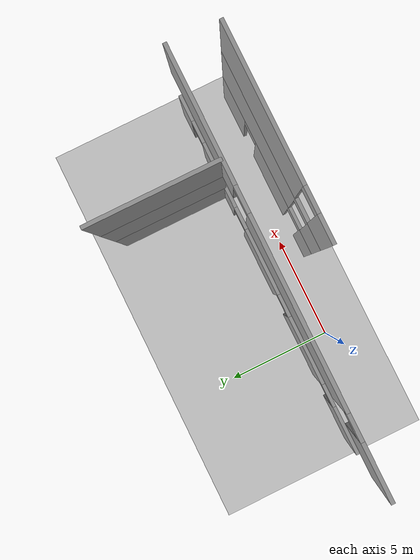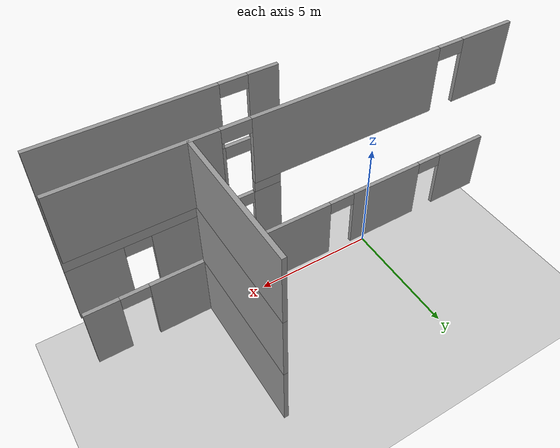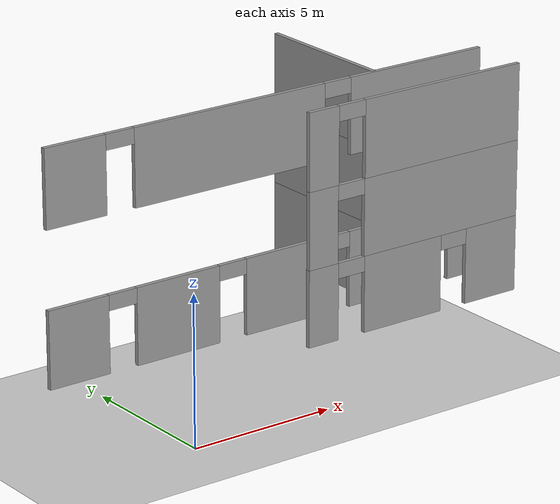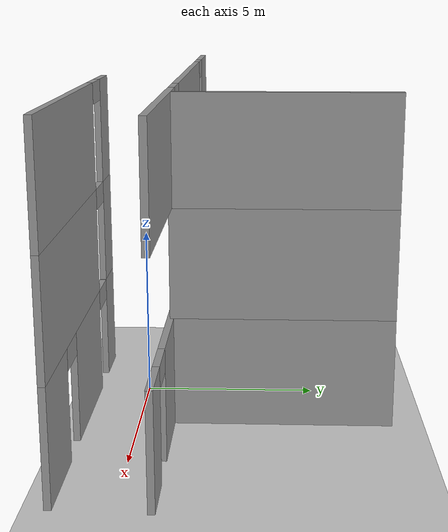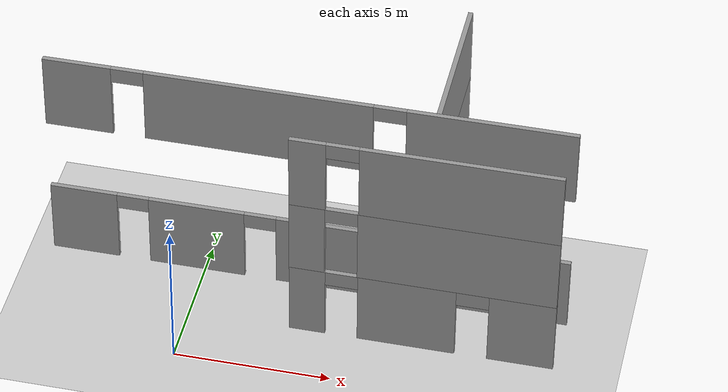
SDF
<sdf version="1.6">
 <world name="default">
  <model name="ground_plane">
   <static>1</static>
   <link name="link">
    <collision name="collision">
     <geometry><plane><normal>0 0 1</normal><size>100 100</size></plane></geometry>
     <surface>
      <contact><collide_bitmask>65535</collide_bitmask></contact>
      <friction><ode><mu>100</mu><mu2>50</mu2></ode></friction>
     </surface>
    </collision>
    <visual name="visual">
     <cast_shadows>0</cast_shadows>
     <geometry><plane><normal>0 0 1</normal><size>100 100</size></plane></geometry>
     <material>
      <script><uri>file://media/materials/scripts/gazebo.material</uri><name>Gazebo/Grey</name></script>
     </material>
    </visual>
   </link>
  </model>
  <model name="floor2plan_v2">
   <link name="Wall_110">
    <pose>7.96541 3.97 5 0 0 -1.5708</pose>
    <visual name="Wall_110_Visual">
     <pose>0 0 1.25 0 -0 0</pose>
     <geometry><box><size>5 0.15 2.5</size></box></geometry>
     <material>
      <script><uri>file://media/materials/scripts/gazebo.material</uri><name>Gazebo/Grey</name></script>
      <ambient>1 1 1 1</ambient>
      <shader type="pixel"/>
      <diffuse>0.7 0.7 0.7 1</diffuse>
      <specular>0.01 0.01 0.01 1</specular>
      <emissive>0 0 0 1</emissive>
     </material>
     <meta><layer>2</layer></meta>
    </visual>
    <collision name="Wall_110_Collision">
     <pose>0 0 1.25 0 -0 0</pose>
     <geometry><box><size>5 0.15 2.5</size></box></geometry>
     <surface>
      <friction>
       <ode><mu>1</mu><mu2>1</mu2><fdir1>0 0 0</fdir1><slip1>0</slip1><slip2>0</slip2></ode>
       <torsional>
        <coefficient>1</coefficient>
        <patch_radius>0</patch_radius>
        <surface_radius>0</surface_radius>
        <use_patch_radius>1</use_patch_radius>
        <ode><slip>0</slip></ode>
       </torsional>
      </friction>
      <bounce><restitution_coefficient>0</restitution_coefficient><threshold>1e+06</threshold></bounce>
      <contact>
       <collide_without_contact>0</collide_without_contact>
       <collide_without_contact_bitmask>1</collide_without_contact_bitmask>
       <collide_bitmask>1</collide_bitmask>
       <ode>
        <soft_cfm>0</soft_cfm>
        <soft_erp>0.2</soft_erp>
        <kp>1e+13</kp>
        <kd>1</kd>
        <max_vel>0.01</max_vel>
        <min_depth>0</min_depth>
       </ode>
       <bullet>
        <split_impulse>1</split_impulse>
        <split_impulse_penetration_threshold>-0.01</split_impulse_penetration_threshold>
        <soft_cfm>0</soft_cfm>
        <soft_erp>0.2</soft_erp>
        <kp>1e+13</kp>
        <kd>1</kd>
       </bullet>
      </contact>
     </surface>
    </collision>
   </link>
   <link name="Wall_116">
    <pose>7.9911 -0.509284 5 0 -0 0</pose>
    <visual name="Wall_116_Visual_0">
     <pose>-3.526 0 1.25 0 -0 0</pose>
     <geometry><box><size>1.086 0.15 2.5</size></box></geometry>
     <material>
      <script><uri>file://media/materials/scripts/gazebo.material</uri><name>Gazebo/Grey</name></script>
      <ambient>1 1 1 1</ambient>
      <shader type="pixel"/>
      <diffuse>0.7 0.7 0.7 1</diffuse>
      <specular>0.01 0.01 0.01 1</specular>
      <emissive>0 0 0 1</emissive>
     </material>
     <meta><layer>2</layer></meta>
    </visual>
    <visual name="Wall_116_Visual_1">
     <pose>1.043 0 1.25 0 -0 0</pose>
     <geometry><box><size>6.052 0.15 2.5</size></box></geometry>
     <material>
      <script><uri>file://media/materials/scripts/gazebo.material</uri><name>Gazebo/Grey</name></script>
      <ambient>1 1 1 1</ambient>
      <shader type="pixel"/>
      <diffuse>0.7 0.7 0.7 1</diffuse>
      <specular>0.01 0.01 0.01 1</specular>
      <emissive>0 0 0 1</emissive>
     </material>
     <meta><layer>2</layer></meta>
    </visual>
    <visual name="Wall_116_Visual_2">
     <pose>-2.483 0 2.25 0 -0 0</pose>
     <geometry><box><size>1 0.15 0.5</size></box></geometry>
     <material>
      <script><uri>file://media/materials/scripts/gazebo.material</uri><name>Gazebo/Grey</name></script>
      <ambient>1 1 1 1</ambient>
      <shader type="pixel"/>
      <diffuse>0.7 0.7 0.7 1</diffuse>
      <specular>0.01 0.01 0.01 1</specular>
      <emissive>0 0 0 1</emissive>
     </material>
     <meta><layer>2</layer></meta>
    </visual>
    <collision name="Wall_116_Collision_0">
     <pose>-3.526 0 1.25 0 -0 0</pose>
     <geometry><box><size>1.086 0.15 2.5</size></box></geometry>
     <surface>
      <friction>
       <ode><mu>1</mu><mu2>1</mu2><fdir1>0 0 0</fdir1><slip1>0</slip1><slip2>0</slip2></ode>
       <torsional>
        <coefficient>1</coefficient>
        <patch_radius>0</patch_radius>
        <surface_radius>0</surface_radius>
        <use_patch_radius>1</use_patch_radius>
        <ode><slip>0</slip></ode>
       </torsional>
      </friction>
      <bounce><restitution_coefficient>0</restitution_coefficient><threshold>1e+06</threshold></bounce>
      <contact>
       <collide_without_contact>0</collide_without_contact>
       <collide_without_contact_bitmask>1</collide_without_contact_bitmask>
       <collide_bitmask>1</collide_bitmask>
       <ode>
        <soft_cfm>0</soft_cfm>
        <soft_erp>0.2</soft_erp>
        <kp>1e+13</kp>
        <kd>1</kd>
        <max_vel>0.01</max_vel>
        <min_depth>0</min_depth>
       </ode>
       <bullet>
        <split_impulse>1</split_impulse>
        <split_impulse_penetration_threshold>-0.01</split_impulse_penetration_threshold>
        <soft_cfm>0</soft_cfm>
        <soft_erp>0.2</soft_erp>
        <kp>1e+13</kp>
        <kd>1</kd>
       </bullet>
      </contact>
     </surface>
    </collision>
    <collision name="Wall_116_Collision_1">
     <pose>1.043 0 1.25 0 -0 0</pose>
     <geometry><box><size>6.052 0.15 2.5</size></box></geometry>
     <surface>
      <friction>
       <ode><mu>1</mu><mu2>1</mu2><fdir1>0 0 0</fdir1><slip1>0</slip1><slip2>0</slip2></ode>
       <torsional>
        <coefficient>1</coefficient>
        <patch_radius>0</patch_radius>
        <surface_radius>0</surface_radius>
        <use_patch_radius>1</use_patch_radius>
        <ode><slip>0</slip></ode>
       </torsional>
      </friction>
      <bounce><restitution_coefficient>0</restitution_coefficient><threshold>1e+06</threshold></bounce>
      <contact>
       <collide_without_contact>0</collide_without_contact>
       <collide_without_contact_bitmask>1</collide_without_contact_bitmask>
       <collide_bitmask>1</collide_bitmask>
       <ode>
        <soft_cfm>0</soft_cfm>
        <soft_erp>0.2</soft_erp>
        <kp>1e+13</kp>
        <kd>1</kd>
        <max_vel>0.01</max_vel>
        <min_depth>0</min_depth>
       </ode>
       <bullet>
        <split_impulse>1</split_impulse>
        <split_impulse_penetration_threshold>-0.01</split_impulse_penetration_threshold>
        <soft_cfm>0</soft_cfm>
        <soft_erp>0.2</soft_erp>
        <kp>1e+13</kp>
        <kd>1</kd>
       </bullet>
      </contact>
     </surface>
    </collision>
    <collision name="Wall_116_Collision_2">
     <pose>-2.483 0 2.25 0 -0 0</pose>
     <geometry><box><size>1 0.15 0.5</size></box></geometry>
     <surface>
      <friction>
       <ode><mu>1</mu><mu2>1</mu2><fdir1>0 0 0</fdir1><slip1>0</slip1><slip2>0</slip2></ode>
       <torsional>
        <coefficient>1</coefficient>
        <patch_radius>0</patch_radius>
        <surface_radius>0</surface_radius>
        <use_patch_radius>1</use_patch_radius>
        <ode><slip>0</slip></ode>
       </torsional>
      </friction>
      <bounce><restitution_coefficient>0</restitution_coefficient><threshold>1e+06</threshold></bounce>
      <contact>
       <collide_without_contact>0</collide_without_contact>
       <collide_without_contact_bitmask>1</collide_without_contact_bitmask>
       <collide_bitmask>1</collide_bitmask>
       <ode>
        <soft_cfm>0</soft_cfm>
        <soft_erp>0.2</soft_erp>
        <kp>1e+13</kp>
        <kd>1</kd>
        <max_vel>0.01</max_vel>
        <min_depth>0</min_depth>
       </ode>
       <bullet>
        <split_impulse>1</split_impulse>
        <split_impulse_penetration_threshold>-0.01</split_impulse_penetration_threshold>
        <soft_cfm>0</soft_cfm>
        <soft_erp>0.2</soft_erp>
        <kp>1e+13</kp>
        <kd>1</kd>
       </bullet>
      </contact>
     </surface>
    </collision>
   </link>
   <link name="Wall_131">
    <pose>4.0241 1.47672 7.5 0 -0 0</pose>
    <visual name="Wall_131_Visual_0">
     <pose>-7.0665 0 1.25 0 -0 0</pose>
     <geometry><box><size>2.117 0.15 2.5</size></box></geometry>
     <material>
      <script><uri>file://media/materials/scripts/gazebo.material</uri><name>Gazebo/Grey</name></script>
      <ambient>1 1 1 1</ambient>
      <shader type="pixel"/>
      <diffuse>0.7 0.7 0.7 1</diffuse>
      <specular>0.01 0.01 0.01 1</specular>
      <emissive>0 0 0 1</emissive>
     </material>
     <meta><layer>3</layer></meta>
    </visual>
    <visual name="Wall_131_Visual_1">
     <pose>-1.506 0 1.25 0 -0 0</pose>
     <geometry><box><size>7.004 0.15 2.5</size></box></geometry>
     <material>
      <script><uri>file://media/materials/scripts/gazebo.material</uri><name>Gazebo/Grey</name></script>
      <ambient>1 1 1 1</ambient>
      <shader type="pixel"/>
      <diffuse>0.7 0.7 0.7 1</diffuse>
      <specular>0.01 0.01 0.01 1</specular>
      <emissive>0 0 0 1</emissive>
     </material>
     <meta><layer>3</layer></meta>
    </visual>
    <visual name="Wall_131_Visual_2">
     <pose>5.5605 0 1.25 0 -0 0</pose>
     <geometry><box><size>5.129 0.15 2.5</size></box></geometry>
     <material>
      <script><uri>file://media/materials/scripts/gazebo.material</uri><name>Gazebo/Grey</name></script>
      <ambient>1 1 1 1</ambient>
      <shader type="pixel"/>
      <diffuse>0.7 0.7 0.7 1</diffuse>
      <specular>0.01 0.01 0.01 1</specular>
      <emissive>0 0 0 1</emissive>
     </material>
     <meta><layer>3</layer></meta>
    </visual>
    <visual name="Wall_131_Visual_3">
     <pose>-5.508 0 2.25 0 -0 0</pose>
     <geometry><box><size>1 0.15 0.5</size></box></geometry>
     <material>
      <script><uri>file://media/materials/scripts/gazebo.material</uri><name>Gazebo/Grey</name></script>
      <ambient>1 1 1 1</ambient>
      <shader type="pixel"/>
      <diffuse>0.7 0.7 0.7 1</diffuse>
      <specular>0.01 0.01 0.01 1</specular>
      <emissive>0 0 0 1</emissive>
     </material>
     <meta><layer>3</layer></meta>
    </visual>
    <visual name="Wall_131_Visual_4">
     <pose>2.496 0 2.25 0 -0 0</pose>
     <geometry><box><size>1 0.15 0.5</size></box></geometry>
     <material>
      <script><uri>file://media/materials/scripts/gazebo.material</uri><name>Gazebo/Grey</name></script>
      <ambient>1 1 1 1</ambient>
      <shader type="pixel"/>
      <diffuse>0.7 0.7 0.7 1</diffuse>
      <specular>0.01 0.01 0.01 1</specular>
      <emissive>0 0 0 1</emissive>
     </material>
     <meta><layer>3</layer></meta>
    </visual>
    <collision name="Wall_131_Collision_0">
     <pose>-7.0665 0 1.25 0 -0 0</pose>
     <geometry><box><size>2.117 0.15 2.5</size></box></geometry>
     <surface>
      <friction>
       <ode><mu>1</mu><mu2>1</mu2><fdir1>0 0 0</fdir1><slip1>0</slip1><slip2>0</slip2></ode>
       <torsional>
        <coefficient>1</coefficient>
        <patch_radius>0</patch_radius>
        <surface_radius>0</surface_radius>
        <use_patch_radius>1</use_patch_radius>
        <ode><slip>0</slip></ode>
       </torsional>
      </friction>
      <bounce><restitution_coefficient>0</restitution_coefficient><threshold>1e+06</threshold></bounce>
      <contact>
       <collide_without_contact>0</collide_without_contact>
       <collide_without_contact_bitmask>1</collide_without_contact_bitmask>
       <collide_bitmask>1</collide_bitmask>
       <ode>
        <soft_cfm>0</soft_cfm>
        <soft_erp>0.2</soft_erp>
        <kp>1e+13</kp>
        <kd>1</kd>
        <max_vel>0.01</max_vel>
        <min_depth>0</min_depth>
       </ode>
       <bullet>
        <split_impulse>1</split_impulse>
        <split_impulse_penetration_threshold>-0.01</split_impulse_penetration_threshold>
        <soft_cfm>0</soft_cfm>
        <soft_erp>0.2</soft_erp>
        <kp>1e+13</kp>
        <kd>1</kd>
       </bullet>
      </contact>
     </surface>
    </collision>
    <collision name="Wall_131_Collision_1">
     <pose>-1.506 0 1.25 0 -0 0</pose>
     <geometry><box><size>7.004 0.15 2.5</size></box></geometry>
     <surface>
      <friction>
       <ode><mu>1</mu><mu2>1</mu2><fdir1>0 0 0</fdir1><slip1>0</slip1><slip2>0</slip2></ode>
       <torsional>
        <coefficient>1</coefficient>
        <patch_radius>0</patch_radius>
        <surface_radius>0</surface_radius>
        <use_patch_radius>1</use_patch_radius>
        <ode><slip>0</slip></ode>
       </torsional>
      </friction>
      <bounce><restitution_coefficient>0</restitution_coefficient><threshold>1e+06</threshold></bounce>
      <contact>
       <collide_without_contact>0</collide_without_contact>
       <collide_without_contact_bitmask>1</collide_without_contact_bitmask>
       <collide_bitmask>1</collide_bitmask>
       <ode>
        <soft_cfm>0</soft_cfm>
        <soft_erp>0.2</soft_erp>
        <kp>1e+13</kp>
        <kd>1</kd>
        <max_vel>0.01</max_vel>
        <min_depth>0</min_depth>
       </ode>
       <bullet>
        <split_impulse>1</split_impulse>
        <split_impulse_penetration_threshold>-0.01</split_impulse_penetration_threshold>
        <soft_cfm>0</soft_cfm>
        <soft_erp>0.2</soft_erp>
        <kp>1e+13</kp>
        <kd>1</kd>
       </bullet>
      </contact>
     </surface>
    </collision>
    <collision name="Wall_131_Collision_3">
     <pose>-5.508 0 2.25 0 -0 0</pose>
     <geometry><box><size>1 0.15 0.5</size></box></geometry>
     <surface>
      <friction>
       <ode><mu>1</mu><mu2>1</mu2><fdir1>0 0 0</fdir1><slip1>0</slip1><slip2>0</slip2></ode>
       <torsional>
        <coefficient>1</coefficient>
        <patch_radius>0</patch_radius>
        <surface_radius>0</surface_radius>
        <use_patch_radius>1</use_patch_radius>
        <ode><slip>0</slip></ode>
       </torsional>
      </friction>
      <bounce><restitution_coefficient>0</restitution_coefficient><threshold>1e+06</threshold></bounce>
      <contact>
       <collide_without_contact>0</collide_without_contact>
       <collide_without_contact_bitmask>1</collide_without_contact_bitmask>
       <collide_bitmask>1</collide_bitmask>
       <ode>
        <soft_cfm>0</soft_cfm>
        <soft_erp>0.2</soft_erp>
        <kp>1e+13</kp>
        <kd>1</kd>
        <max_vel>0.01</max_vel>
        <min_depth>0</min_depth>
       </ode>
       <bullet>
        <split_impulse>1</split_impulse>
        <split_impulse_penetration_threshold>-0.01</split_impulse_penetration_threshold>
        <soft_cfm>0</soft_cfm>
        <soft_erp>0.2</soft_erp>
        <kp>1e+13</kp>
        <kd>1</kd>
       </bullet>
      </contact>
     </surface>
    </collision>
    <collision name="Wall_131_Collision_2">
     <pose>5.5605 0 1.25 0 -0 0</pose>
     <geometry><box><size>5.129 0.15 2.5</size></box></geometry>
     <surface>
      <friction>
       <ode><mu>1</mu><mu2>1</mu2><fdir1>0 0 0</fdir1><slip1>0</slip1><slip2>0</slip2></ode>
       <torsional>
        <coefficient>1</coefficient>
        <patch_radius>0</patch_radius>
        <surface_radius>0</surface_radius>
        <use_patch_radius>1</use_patch_radius>
        <ode><slip>0</slip></ode>
       </torsional>
      </friction>
      <bounce><restitution_coefficient>0</restitution_coefficient><threshold>1e+06</threshold></bounce>
      <contact>
       <collide_without_contact>0</collide_without_contact>
       <collide_without_contact_bitmask>1</collide_without_contact_bitmask>
       <collide_bitmask>1</collide_bitmask>
       <ode>
        <soft_cfm>0</soft_cfm>
        <soft_erp>0.2</soft_erp>
        <kp>1e+13</kp>
        <kd>1</kd>
        <max_vel>0.01</max_vel>
        <min_depth>0</min_depth>
       </ode>
       <bullet>
        <split_impulse>1</split_impulse>
        <split_impulse_penetration_threshold>-0.01</split_impulse_penetration_threshold>
        <soft_cfm>0</soft_cfm>
        <soft_erp>0.2</soft_erp>
        <kp>1e+13</kp>
        <kd>1</kd>
       </bullet>
      </contact>
     </surface>
    </collision>
    <collision name="Wall_131_Collision_4">
     <pose>2.496 0 2.25 0 -0 0</pose>
     <geometry><box><size>1 0.15 0.5</size></box></geometry>
     <surface>
      <friction>
       <ode><mu>1</mu><mu2>1</mu2><fdir1>0 0 0</fdir1><slip1>0</slip1><slip2>0</slip2></ode>
       <torsional>
        <coefficient>1</coefficient>
        <patch_radius>0</patch_radius>
        <surface_radius>0</surface_radius>
        <use_patch_radius>1</use_patch_radius>
        <ode><slip>0</slip></ode>
       </torsional>
      </friction>
      <bounce><restitution_coefficient>0</restitution_coefficient><threshold>1e+06</threshold></bounce>
      <contact>
       <collide_without_contact>0</collide_without_contact>
       <collide_without_contact_bitmask>1</collide_without_contact_bitmask>
       <collide_bitmask>1</collide_bitmask>
       <ode>
        <soft_cfm>0</soft_cfm>
        <soft_erp>0.2</soft_erp>
        <kp>1e+13</kp>
        <kd>1</kd>
        <max_vel>0.01</max_vel>
        <min_depth>0</min_depth>
       </ode>
       <bullet>
        <split_impulse>1</split_impulse>
        <split_impulse_penetration_threshold>-0.01</split_impulse_penetration_threshold>
        <soft_cfm>0</soft_cfm>
        <soft_erp>0.2</soft_erp>
        <kp>1e+13</kp>
        <kd>1</kd>
       </bullet>
      </contact>
     </surface>
    </collision>
   </link>
   <link name="Wall_136">
    <pose>7.96541 3.97 7.5 0 0 -1.5708</pose>
    <visual name="Wall_136_Visual">
     <pose>0 0 1.25 0 -0 0</pose>
     <geometry><box><size>5 0.15 2.5</size></box></geometry>
     <material>
      <script><uri>file://media/materials/scripts/gazebo.material</uri><name>Gazebo/Grey</name></script>
      <ambient>1 1 1 1</ambient>
      <shader type="pixel"/>
      <diffuse>0.7 0.7 0.7 1</diffuse>
      <specular>0.01 0.01 0.01 1</specular>
      <emissive>0 0 0 1</emissive>
     </material>
     <meta><layer>3</layer></meta>
    </visual>
    <collision name="Wall_136_Collision">
     <pose>0 0 1.25 0 -0 0</pose>
     <geometry><box><size>5 0.15 2.5</size></box></geometry>
     <surface>
      <friction>
       <ode><mu>1</mu><mu2>1</mu2><fdir1>0 0 0</fdir1><slip1>0</slip1><slip2>0</slip2></ode>
       <torsional>
        <coefficient>1</coefficient>
        <patch_radius>0</patch_radius>
        <surface_radius>0</surface_radius>
        <use_patch_radius>1</use_patch_radius>
        <ode><slip>0</slip></ode>
       </torsional>
      </friction>
      <bounce><restitution_coefficient>0</restitution_coefficient><threshold>1e+06</threshold></bounce>
      <contact>
       <collide_without_contact>0</collide_without_contact>
       <collide_without_contact_bitmask>1</collide_without_contact_bitmask>
       <collide_bitmask>1</collide_bitmask>
       <ode>
        <soft_cfm>0</soft_cfm>
        <soft_erp>0.2</soft_erp>
        <kp>1e+13</kp>
        <kd>1</kd>
        <max_vel>0.01</max_vel>
        <min_depth>0</min_depth>
       </ode>
       <bullet>
        <split_impulse>1</split_impulse>
        <split_impulse_penetration_threshold>-0.01</split_impulse_penetration_threshold>
        <soft_cfm>0</soft_cfm>
        <soft_erp>0.2</soft_erp>
        <kp>1e+13</kp>
        <kd>1</kd>
       </bullet>
      </contact>
     </surface>
    </collision>
   </link>
   <link name="Wall_142">
    <pose>7.9911 -0.509284 7.5 0 -0 0</pose>
    <visual name="Wall_142_Visual_0">
     <pose>-3.5145 0 1.25 0 -0 0</pose>
     <geometry><box><size>1.109 0.15 2.5</size></box></geometry>
     <material>
      <script><uri>file://media/materials/scripts/gazebo.material</uri><name>Gazebo/Grey</name></script>
      <ambient>1 1 1 1</ambient>
      <shader type="pixel"/>
      <diffuse>0.7 0.7 0.7 1</diffuse>
      <specular>0.01 0.01 0.01 1</specular>
      <emissive>0 0 0 1</emissive>
     </material>
     <meta><layer>3</layer></meta>
    </visual>
    <visual name="Wall_142_Visual_1">
     <pose>1.0545 0 1.25 0 -0 0</pose>
     <geometry><box><size>6.029 0.15 2.5</size></box></geometry>
     <material>
      <script><uri>file://media/materials/scripts/gazebo.material</uri><name>Gazebo/Grey</name></script>
      <ambient>1 1 1 1</ambient>
      <shader type="pixel"/>
      <diffuse>0.7 0.7 0.7 1</diffuse>
      <specular>0.01 0.01 0.01 1</specular>
      <emissive>0 0 0 1</emissive>
     </material>
     <meta><layer>3</layer></meta>
    </visual>
    <visual name="Wall_142_Visual_2">
     <pose>-2.46 0 2.25 0 -0 0</pose>
     <geometry><box><size>1 0.15 0.5</size></box></geometry>
     <material>
      <script><uri>file://media/materials/scripts/gazebo.material</uri><name>Gazebo/Grey</name></script>
      <ambient>1 1 1 1</ambient>
      <shader type="pixel"/>
      <diffuse>0.7 0.7 0.7 1</diffuse>
      <specular>0.01 0.01 0.01 1</specular>
      <emissive>0 0 0 1</emissive>
     </material>
     <meta><layer>3</layer></meta>
    </visual>
    <collision name="Wall_142_Collision_0">
     <pose>-3.5145 0 1.25 0 -0 0</pose>
     <geometry><box><size>1.109 0.15 2.5</size></box></geometry>
     <surface>
      <friction>
       <ode><mu>1</mu><mu2>1</mu2><fdir1>0 0 0</fdir1><slip1>0</slip1><slip2>0</slip2></ode>
       <torsional>
        <coefficient>1</coefficient>
        <patch_radius>0</patch_radius>
        <surface_radius>0</surface_radius>
        <use_patch_radius>1</use_patch_radius>
        <ode><slip>0</slip></ode>
       </torsional>
      </friction>
      <bounce><restitution_coefficient>0</restitution_coefficient><threshold>1e+06</threshold></bounce>
      <contact>
       <collide_without_contact>0</collide_without_contact>
       <collide_without_contact_bitmask>1</collide_without_contact_bitmask>
       <collide_bitmask>1</collide_bitmask>
       <ode>
        <soft_cfm>0</soft_cfm>
        <soft_erp>0.2</soft_erp>
        <kp>1e+13</kp>
        <kd>1</kd>
        <max_vel>0.01</max_vel>
        <min_depth>0</min_depth>
       </ode>
       <bullet>
        <split_impulse>1</split_impulse>
        <split_impulse_penetration_threshold>-0.01</split_impulse_penetration_threshold>
        <soft_cfm>0</soft_cfm>
        <soft_erp>0.2</soft_erp>
        <kp>1e+13</kp>
        <kd>1</kd>
       </bullet>
      </contact>
     </surface>
    </collision>
    <collision name="Wall_142_Collision_2">
     <pose>-2.46 0 2.25 0 -0 0</pose>
     <geometry><box><size>1 0.15 0.5</size></box></geometry>
     <surface>
      <friction>
       <ode><mu>1</mu><mu2>1</mu2><fdir1>0 0 0</fdir1><slip1>0</slip1><slip2>0</slip2></ode>
       <torsional>
        <coefficient>1</coefficient>
        <patch_radius>0</patch_radius>
        <surface_radius>0</surface_radius>
        <use_patch_radius>1</use_patch_radius>
        <ode><slip>0</slip></ode>
       </torsional>
      </friction>
      <bounce><restitution_coefficient>0</restitution_coefficient><threshold>1e+06</threshold></bounce>
      <contact>
       <collide_without_contact>0</collide_without_contact>
       <collide_without_contact_bitmask>1</collide_without_contact_bitmask>
       <collide_bitmask>1</collide_bitmask>
       <ode>
        <soft_cfm>0</soft_cfm>
        <soft_erp>0.2</soft_erp>
        <kp>1e+13</kp>
        <kd>1</kd>
        <max_vel>0.01</max_vel>
        <min_depth>0</min_depth>
       </ode>
       <bullet>
        <split_impulse>1</split_impulse>
        <split_impulse_penetration_threshold>-0.01</split_impulse_penetration_threshold>
        <soft_cfm>0</soft_cfm>
        <soft_erp>0.2</soft_erp>
        <kp>1e+13</kp>
        <kd>1</kd>
       </bullet>
      </contact>
     </surface>
    </collision>
    <collision name="Wall_142_Collision_1">
     <pose>1.0545 0 1.25 0 -0 0</pose>
     <geometry><box><size>6.029 0.15 2.5</size></box></geometry>
     <surface>
      <friction>
       <ode><mu>1</mu><mu2>1</mu2><fdir1>0 0 0</fdir1><slip1>0</slip1><slip2>0</slip2></ode>
       <torsional>
        <coefficient>1</coefficient>
        <patch_radius>0</patch_radius>
        <surface_radius>0</surface_radius>
        <use_patch_radius>1</use_patch_radius>
        <ode><slip>0</slip></ode>
       </torsional>
      </friction>
      <bounce><restitution_coefficient>0</restitution_coefficient><threshold>1e+06</threshold></bounce>
      <contact>
       <collide_without_contact>0</collide_without_contact>
       <collide_without_contact_bitmask>1</collide_without_contact_bitmask>
       <collide_bitmask>1</collide_bitmask>
       <ode>
        <soft_cfm>0</soft_cfm>
        <soft_erp>0.2</soft_erp>
        <kp>1e+13</kp>
        <kd>1</kd>
        <max_vel>0.01</max_vel>
        <min_depth>0</min_depth>
       </ode>
       <bullet>
        <split_impulse>1</split_impulse>
        <split_impulse_penetration_threshold>-0.01</split_impulse_penetration_threshold>
        <soft_cfm>0</soft_cfm>
        <soft_erp>0.2</soft_erp>
        <kp>1e+13</kp>
        <kd>1</kd>
       </bullet>
      </contact>
     </surface>
    </collision>
   </link>
   <link name="Wall_79">
    <pose>4.0241 1.47672 2.5 0 -0 0</pose>
    <visual name="Wall_79_Visual_0">
     <pose>-7.0665 0 1.25 0 -0 0</pose>
     <geometry><box><size>2.117 0.15 2.5</size></box></geometry>
     <material>
      <script><uri>file://media/materials/scripts/gazebo.material</uri><name>Gazebo/Grey</name></script>
      <ambient>1 1 1 1</ambient>
      <shader type="pixel"/>
      <diffuse>0.7 0.7 0.7 1</diffuse>
      <specular>0.01 0.01 0.01 1</specular>
      <emissive>0 0 0 1</emissive>
     </material>
     <meta><layer>1</layer></meta>
    </visual>
    <visual name="Wall_79_Visual_1">
     <pose>-3.4955 0 1.25 0 -0 0</pose>
     <geometry><box><size>3.025 0.15 2.5</size></box></geometry>
     <material>
      <script><uri>file://media/materials/scripts/gazebo.material</uri><name>Gazebo/Grey</name></script>
      <ambient>1 1 1 1</ambient>
      <shader type="pixel"/>
      <diffuse>0.7 0.7 0.7 1</diffuse>
      <specular>0.01 0.01 0.01 1</specular>
      <emissive>0 0 0 1</emissive>
     </material>
     <meta><layer>1</layer></meta>
    </visual>
    <visual name="Wall_79_Visual_2">
     <pose>0.495 0 1.25 0 -0 0</pose>
     <geometry><box><size>2.956 0.15 2.5</size></box></geometry>
     <material>
      <script><uri>file://media/materials/scripts/gazebo.material</uri><name>Gazebo/Grey</name></script>
      <ambient>1 1 1 1</ambient>
      <shader type="pixel"/>
      <diffuse>0.7 0.7 0.7 1</diffuse>
      <specular>0.01 0.01 0.01 1</specular>
      <emissive>0 0 0 1</emissive>
     </material>
     <meta><layer>1</layer></meta>
    </visual>
    <visual name="Wall_79_Visual_3">
     <pose>4.451 0 1.25 0 -0 0</pose>
     <geometry><box><size>2.956 0.15 2.5</size></box></geometry>
     <material>
      <script><uri>file://media/materials/scripts/gazebo.material</uri><name>Gazebo/Grey</name></script>
      <ambient>1 1 1 1</ambient>
      <shader type="pixel"/>
      <diffuse>0.7 0.7 0.7 1</diffuse>
      <specular>0.01 0.01 0.01 1</specular>
      <emissive>0 0 0 1</emissive>
     </material>
     <meta><layer>1</layer></meta>
    </visual>
    <visual name="Wall_79_Visual_4">
     <pose>7.527 0 1.25 0 -0 0</pose>
     <geometry><box><size>1.196 0.15 2.5</size></box></geometry>
     <material>
      <script><uri>file://media/materials/scripts/gazebo.material</uri><name>Gazebo/Grey</name></script>
      <ambient>1 1 1 1</ambient>
      <shader type="pixel"/>
      <diffuse>0.7 0.7 0.7 1</diffuse>
      <specular>0.01 0.01 0.01 1</specular>
      <emissive>0 0 0 1</emissive>
     </material>
     <meta><layer>1</layer></meta>
    </visual>
    <visual name="Wall_79_Visual_5">
     <pose>-5.508 0 2.25 0 -0 0</pose>
     <geometry><box><size>1 0.15 0.5</size></box></geometry>
     <material>
      <script><uri>file://media/materials/scripts/gazebo.material</uri><name>Gazebo/Grey</name></script>
      <ambient>1 1 1 1</ambient>
      <shader type="pixel"/>
      <diffuse>0.7 0.7 0.7 1</diffuse>
      <specular>0.01 0.01 0.01 1</specular>
      <emissive>0 0 0 1</emissive>
     </material>
     <meta><layer>1</layer></meta>
    </visual>
    <visual name="Wall_79_Visual_6">
     <pose>-1.483 0 2.25 0 -0 0</pose>
     <geometry><box><size>1 0.15 0.5</size></box></geometry>
     <material>
      <script><uri>file://media/materials/scripts/gazebo.material</uri><name>Gazebo/Grey</name></script>
      <ambient>1 1 1 1</ambient>
      <shader type="pixel"/>
      <diffuse>0.7 0.7 0.7 1</diffuse>
      <specular>0.01 0.01 0.01 1</specular>
      <emissive>0 0 0 1</emissive>
     </material>
     <meta><layer>1</layer></meta>
    </visual>
    <visual name="Wall_79_Visual_7">
     <pose>2.473 0 2.25 0 -0 0</pose>
     <geometry><box><size>1 0.15 0.5</size></box></geometry>
     <material>
      <script><uri>file://media/materials/scripts/gazebo.material</uri><name>Gazebo/Grey</name></script>
      <ambient>1 1 1 1</ambient>
      <shader type="pixel"/>
      <diffuse>0.7 0.7 0.7 1</diffuse>
      <specular>0.01 0.01 0.01 1</specular>
      <emissive>0 0 0 1</emissive>
     </material>
     <meta><layer>1</layer></meta>
    </visual>
    <visual name="Wall_79_Visual_8">
     <pose>6.429 0 2.25 0 -0 0</pose>
     <geometry><box><size>1 0.15 0.5</size></box></geometry>
     <material>
      <script><uri>file://media/materials/scripts/gazebo.material</uri><name>Gazebo/Grey</name></script>
      <ambient>1 1 1 1</ambient>
      <shader type="pixel"/>
      <diffuse>0.7 0.7 0.7 1</diffuse>
      <specular>0.01 0.01 0.01 1</specular>
      <emissive>0 0 0 1</emissive>
     </material>
     <meta><layer>1</layer></meta>
    </visual>
    <collision name="Wall_79_Collision_0">
     <pose>-7.0665 0 1.25 0 -0 0</pose>
     <geometry><box><size>2.117 0.15 2.5</size></box></geometry>
     <surface>
      <friction>
       <ode><mu>1</mu><mu2>1</mu2><fdir1>0 0 0</fdir1><slip1>0</slip1><slip2>0</slip2></ode>
       <torsional>
        <coefficient>1</coefficient>
        <patch_radius>0</patch_radius>
        <surface_radius>0</surface_radius>
        <use_patch_radius>1</use_patch_radius>
        <ode><slip>0</slip></ode>
       </torsional>
      </friction>
      <bounce><restitution_coefficient>0</restitution_coefficient><threshold>1e+06</threshold></bounce>
      <contact>
       <collide_without_contact>0</collide_without_contact>
       <collide_without_contact_bitmask>1</collide_without_contact_bitmask>
       <collide_bitmask>1</collide_bitmask>
       <ode>
        <soft_cfm>0</soft_cfm>
        <soft_erp>0.2</soft_erp>
        <kp>1e+13</kp>
        <kd>1</kd>
        <max_vel>0.01</max_vel>
        <min_depth>0</min_depth>
       </ode>
       <bullet>
        <split_impulse>1</split_impulse>
        <split_impulse_penetration_threshold>-0.01</split_impulse_penetration_threshold>
        <soft_cfm>0</soft_cfm>
        <soft_erp>0.2</soft_erp>
        <kp>1e+13</kp>
        <kd>1</kd>
       </bullet>
      </contact>
     </surface>
    </collision>
    <collision name="Wall_79_Collision_2">
     <pose>0.495 0 1.25 0 -0 0</pose>
     <geometry><box><size>2.956 0.15 2.5</size></box></geometry>
     <surface>
      <friction>
       <ode><mu>1</mu><mu2>1</mu2><fdir1>0 0 0</fdir1><slip1>0</slip1><slip2>0</slip2></ode>
       <torsional>
        <coefficient>1</coefficient>
        <patch_radius>0</patch_radius>
        <surface_radius>0</surface_radius>
        <use_patch_radius>1</use_patch_radius>
        <ode><slip>0</slip></ode>
       </torsional>
      </friction>
      <bounce><restitution_coefficient>0</restitution_coefficient><threshold>1e+06</threshold></bounce>
      <contact>
       <collide_without_contact>0</collide_without_contact>
       <collide_without_contact_bitmask>1</collide_without_contact_bitmask>
       <collide_bitmask>1</collide_bitmask>
       <ode>
        <soft_cfm>0</soft_cfm>
        <soft_erp>0.2</soft_erp>
        <kp>1e+13</kp>
        <kd>1</kd>
        <max_vel>0.01</max_vel>
        <min_depth>0</min_depth>
       </ode>
       <bullet>
        <split_impulse>1</split_impulse>
        <split_impulse_penetration_threshold>-0.01</split_impulse_penetration_threshold>
        <soft_cfm>0</soft_cfm>
        <soft_erp>0.2</soft_erp>
        <kp>1e+13</kp>
        <kd>1</kd>
       </bullet>
      </contact>
     </surface>
    </collision>
    <collision name="Wall_79_Collision_1">
     <pose>-3.4955 0 1.25 0 -0 0</pose>
     <geometry><box><size>3.025 0.15 2.5</size></box></geometry>
     <surface>
      <friction>
       <ode><mu>1</mu><mu2>1</mu2><fdir1>0 0 0</fdir1><slip1>0</slip1><slip2>0</slip2></ode>
       <torsional>
        <coefficient>1</coefficient>
        <patch_radius>0</patch_radius>
        <surface_radius>0</surface_radius>
        <use_patch_radius>1</use_patch_radius>
        <ode><slip>0</slip></ode>
       </torsional>
      </friction>
      <bounce><restitution_coefficient>0</restitution_coefficient><threshold>1e+06</threshold></bounce>
      <contact>
       <collide_without_contact>0</collide_without_contact>
       <collide_without_contact_bitmask>1</collide_without_contact_bitmask>
       <collide_bitmask>1</collide_bitmask>
       <ode>
        <soft_cfm>0</soft_cfm>
        <soft_erp>0.2</soft_erp>
        <kp>1e+13</kp>
        <kd>1</kd>
        <max_vel>0.01</max_vel>
        <min_depth>0</min_depth>
       </ode>
       <bullet>
        <split_impulse>1</split_impulse>
        <split_impulse_penetration_threshold>-0.01</split_impulse_penetration_threshold>
        <soft_cfm>0</soft_cfm>
        <soft_erp>0.2</soft_erp>
        <kp>1e+13</kp>
        <kd>1</kd>
       </bullet>
      </contact>
     </surface>
    </collision>
    <collision name="Wall_79_Collision_3">
     <pose>4.451 0 1.25 0 -0 0</pose>
     <geometry><box><size>2.956 0.15 2.5</size></box></geometry>
     <surface>
      <friction>
       <ode><mu>1</mu><mu2>1</mu2><fdir1>0 0 0</fdir1><slip1>0</slip1><slip2>0</slip2></ode>
       <torsional>
        <coefficient>1</coefficient>
        <patch_radius>0</patch_radius>
        <surface_radius>0</surface_radius>
        <use_patch_radius>1</use_patch_radius>
        <ode><slip>0</slip></ode>
       </torsional>
      </friction>
      <bounce><restitution_coefficient>0</restitution_coefficient><threshold>1e+06</threshold></bounce>
      <contact>
       <collide_without_contact>0</collide_without_contact>
       <collide_without_contact_bitmask>1</collide_without_contact_bitmask>
       <collide_bitmask>1</collide_bitmask>
       <ode>
        <soft_cfm>0</soft_cfm>
        <soft_erp>0.2</soft_erp>
        <kp>1e+13</kp>
        <kd>1</kd>
        <max_vel>0.01</max_vel>
        <min_depth>0</min_depth>
       </ode>
       <bullet>
        <split_impulse>1</split_impulse>
        <split_impulse_penetration_threshold>-0.01</split_impulse_penetration_threshold>
        <soft_cfm>0</soft_cfm>
        <soft_erp>0.2</soft_erp>
        <kp>1e+13</kp>
        <kd>1</kd>
       </bullet>
      </contact>
     </surface>
    </collision>
    <collision name="Wall_79_Collision_4">
     <pose>7.527 0 1.25 0 -0 0</pose>
     <geometry><box><size>1.196 0.15 2.5</size></box></geometry>
     <surface>
      <friction>
       <ode><mu>1</mu><mu2>1</mu2><fdir1>0 0 0</fdir1><slip1>0</slip1><slip2>0</slip2></ode>
       <torsional>
        <coefficient>1</coefficient>
        <patch_radius>0</patch_radius>
        <surface_radius>0</surface_radius>
        <use_patch_radius>1</use_patch_radius>
        <ode><slip>0</slip></ode>
       </torsional>
      </friction>
      <bounce><restitution_coefficient>0</restitution_coefficient><threshold>1e+06</threshold></bounce>
      <contact>
       <collide_without_contact>0</collide_without_contact>
       <collide_without_contact_bitmask>1</collide_without_contact_bitmask>
       <collide_bitmask>1</collide_bitmask>
       <ode>
        <soft_cfm>0</soft_cfm>
        <soft_erp>0.2</soft_erp>
        <kp>1e+13</kp>
        <kd>1</kd>
        <max_vel>0.01</max_vel>
        <min_depth>0</min_depth>
       </ode>
       <bullet>
        <split_impulse>1</split_impulse>
        <split_impulse_penetration_threshold>-0.01</split_impulse_penetration_threshold>
        <soft_cfm>0</soft_cfm>
        <soft_erp>0.2</soft_erp>
        <kp>1e+13</kp>
        <kd>1</kd>
       </bullet>
      </contact>
     </surface>
    </collision>
    <collision name="Wall_79_Collision_5">
     <pose>-5.508 0 2.25 0 -0 0</pose>
     <geometry><box><size>1 0.15 0.5</size></box></geometry>
     <surface>
      <friction>
       <ode><mu>1</mu><mu2>1</mu2><fdir1>0 0 0</fdir1><slip1>0</slip1><slip2>0</slip2></ode>
       <torsional>
        <coefficient>1</coefficient>
        <patch_radius>0</patch_radius>
        <surface_radius>0</surface_radius>
        <use_patch_radius>1</use_patch_radius>
        <ode><slip>0</slip></ode>
       </torsional>
      </friction>
      <bounce><restitution_coefficient>0</restitution_coefficient><threshold>1e+06</threshold></bounce>
      <contact>
       <collide_without_contact>0</collide_without_contact>
       <collide_without_contact_bitmask>1</collide_without_contact_bitmask>
       <collide_bitmask>1</collide_bitmask>
       <ode>
        <soft_cfm>0</soft_cfm>
        <soft_erp>0.2</soft_erp>
        <kp>1e+13</kp>
        <kd>1</kd>
        <max_vel>0.01</max_vel>
        <min_depth>0</min_depth>
       </ode>
       <bullet>
        <split_impulse>1</split_impulse>
        <split_impulse_penetration_threshold>-0.01</split_impulse_penetration_threshold>
        <soft_cfm>0</soft_cfm>
        <soft_erp>0.2</soft_erp>
        <kp>1e+13</kp>
        <kd>1</kd>
       </bullet>
      </contact>
     </surface>
    </collision>
    <collision name="Wall_79_Collision_6">
     <pose>-1.483 0 2.25 0 -0 0</pose>
     <geometry><box><size>1 0.15 0.5</size></box></geometry>
     <surface>
      <friction>
       <ode><mu>1</mu><mu2>1</mu2><fdir1>0 0 0</fdir1><slip1>0</slip1><slip2>0</slip2></ode>
       <torsional>
        <coefficient>1</coefficient>
        <patch_radius>0</patch_radius>
        <surface_radius>0</surface_radius>
        <use_patch_radius>1</use_patch_radius>
        <ode><slip>0</slip></ode>
       </torsional>
      </friction>
      <bounce><restitution_coefficient>0</restitution_coefficient><threshold>1e+06</threshold></bounce>
      <contact>
       <collide_without_contact>0</collide_without_contact>
       <collide_without_contact_bitmask>1</collide_without_contact_bitmask>
       <collide_bitmask>1</collide_bitmask>
       <ode>
        <soft_cfm>0</soft_cfm>
        <soft_erp>0.2</soft_erp>
        <kp>1e+13</kp>
        <kd>1</kd>
        <max_vel>0.01</max_vel>
        <min_depth>0</min_depth>
       </ode>
       <bullet>
        <split_impulse>1</split_impulse>
        <split_impulse_penetration_threshold>-0.01</split_impulse_penetration_threshold>
        <soft_cfm>0</soft_cfm>
        <soft_erp>0.2</soft_erp>
        <kp>1e+13</kp>
        <kd>1</kd>
       </bullet>
      </contact>
     </surface>
    </collision>
    <collision name="Wall_79_Collision_7">
     <pose>2.473 0 2.25 0 -0 0</pose>
     <geometry><box><size>1 0.15 0.5</size></box></geometry>
     <surface>
      <friction>
       <ode><mu>1</mu><mu2>1</mu2><fdir1>0 0 0</fdir1><slip1>0</slip1><slip2>0</slip2></ode>
       <torsional>
        <coefficient>1</coefficient>
        <patch_radius>0</patch_radius>
        <surface_radius>0</surface_radius>
        <use_patch_radius>1</use_patch_radius>
        <ode><slip>0</slip></ode>
       </torsional>
      </friction>
      <bounce><restitution_coefficient>0</restitution_coefficient><threshold>1e+06</threshold></bounce>
      <contact>
       <collide_without_contact>0</collide_without_contact>
       <collide_without_contact_bitmask>1</collide_without_contact_bitmask>
       <collide_bitmask>1</collide_bitmask>
       <ode>
        <soft_cfm>0</soft_cfm>
        <soft_erp>0.2</soft_erp>
        <kp>1e+13</kp>
        <kd>1</kd>
        <max_vel>0.01</max_vel>
        <min_depth>0</min_depth>
       </ode>
       <bullet>
        <split_impulse>1</split_impulse>
        <split_impulse_penetration_threshold>-0.01</split_impulse_penetration_threshold>
        <soft_cfm>0</soft_cfm>
        <soft_erp>0.2</soft_erp>
        <kp>1e+13</kp>
        <kd>1</kd>
       </bullet>
      </contact>
     </surface>
    </collision>
    <collision name="Wall_79_Collision_8">
     <pose>6.429 0 2.25 0 -0 0</pose>
     <geometry><box><size>1 0.15 0.5</size></box></geometry>
     <surface>
      <friction>
       <ode><mu>1</mu><mu2>1</mu2><fdir1>0 0 0</fdir1><slip1>0</slip1><slip2>0</slip2></ode>
       <torsional>
        <coefficient>1</coefficient>
        <patch_radius>0</patch_radius>
        <surface_radius>0</surface_radius>
        <use_patch_radius>1</use_patch_radius>
        <ode><slip>0</slip></ode>
       </torsional>
      </friction>
      <bounce><restitution_coefficient>0</restitution_coefficient><threshold>1e+06</threshold></bounce>
      <contact>
       <collide_without_contact>0</collide_without_contact>
       <collide_without_contact_bitmask>1</collide_without_contact_bitmask>
       <collide_bitmask>1</collide_bitmask>
       <ode>
        <soft_cfm>0</soft_cfm>
        <soft_erp>0.2</soft_erp>
        <kp>1e+13</kp>
        <kd>1</kd>
        <max_vel>0.01</max_vel>
        <min_depth>0</min_depth>
       </ode>
       <bullet>
        <split_impulse>1</split_impulse>
        <split_impulse_penetration_threshold>-0.01</split_impulse_penetration_threshold>
        <soft_cfm>0</soft_cfm>
        <soft_erp>0.2</soft_erp>
        <kp>1e+13</kp>
        <kd>1</kd>
       </bullet>
      </contact>
     </surface>
    </collision>
   </link>
   <link name="Wall_84">
    <pose>7.96541 3.97 2.5 0 0 -1.5708</pose>
    <visual name="Wall_84_Visual">
     <pose>0 0 1.25 0 -0 0</pose>
     <geometry><box><size>5 0.15 2.5</size></box></geometry>
     <material>
      <script><uri>file://media/materials/scripts/gazebo.material</uri><name>Gazebo/Grey</name></script>
      <ambient>1 1 1 1</ambient>
      <shader type="pixel"/>
      <diffuse>0.7 0.7 0.7 1</diffuse>
      <specular>0.01 0.01 0.01 1</specular>
      <emissive>0 0 0 1</emissive>
     </material>
     <meta><layer>1</layer></meta>
    </visual>
    <collision name="Wall_84_Collision">
     <pose>0 0 1.25 0 -0 0</pose>
     <geometry><box><size>5 0.15 2.5</size></box></geometry>
     <surface>
      <friction>
       <ode><mu>1</mu><mu2>1</mu2><fdir1>0 0 0</fdir1><slip1>0</slip1><slip2>0</slip2></ode>
       <torsional>
        <coefficient>1</coefficient>
        <patch_radius>0</patch_radius>
        <surface_radius>0</surface_radius>
        <use_patch_radius>1</use_patch_radius>
        <ode><slip>0</slip></ode>
       </torsional>
      </friction>
      <bounce><restitution_coefficient>0</restitution_coefficient><threshold>1e+06</threshold></bounce>
      <contact>
       <collide_without_contact>0</collide_without_contact>
       <collide_without_contact_bitmask>1</collide_without_contact_bitmask>
       <collide_bitmask>1</collide_bitmask>
       <ode>
        <soft_cfm>0</soft_cfm>
        <soft_erp>0.2</soft_erp>
        <kp>1e+13</kp>
        <kd>1</kd>
        <max_vel>0.01</max_vel>
        <min_depth>0</min_depth>
       </ode>
       <bullet>
        <split_impulse>1</split_impulse>
        <split_impulse_penetration_threshold>-0.01</split_impulse_penetration_threshold>
        <soft_cfm>0</soft_cfm>
        <soft_erp>0.2</soft_erp>
        <kp>1e+13</kp>
        <kd>1</kd>
       </bullet>
      </contact>
     </surface>
    </collision>
   </link>
   <link name="Wall_90">
    <pose>7.9911 -0.509284 2.5 0 -0 0</pose>
    <visual name="Wall_90_Visual_0">
     <pose>-3.5145 0 1.25 0 -0 0</pose>
     <geometry><box><size>1.109 0.15 2.5</size></box></geometry>
     <material>
      <script><uri>file://media/materials/scripts/gazebo.material</uri><name>Gazebo/Grey</name></script>
      <ambient>1 1 1 1</ambient>
      <shader type="pixel"/>
      <diffuse>0.7 0.7 0.7 1</diffuse>
      <specular>0.01 0.01 0.01 1</specular>
      <emissive>0 0 0 1</emissive>
     </material>
     <meta><layer>1</layer></meta>
    </visual>
    <visual name="Wall_90_Visual_1">
     <pose>-0.458999 0 1.25 0 -0 0</pose>
     <geometry><box><size>3.002 0.15 2.5</size></box></geometry>
     <material>
      <script><uri>file://media/materials/scripts/gazebo.material</uri><name>Gazebo/Grey</name></script>
      <ambient>1 1 1 1</ambient>
      <shader type="pixel"/>
      <diffuse>0.7 0.7 0.7 1</diffuse>
      <specular>0.01 0.01 0.01 1</specular>
      <emissive>0 0 0 1</emissive>
     </material>
     <meta><layer>1</layer></meta>
    </visual>
    <visual name="Wall_90_Visual_2">
     <pose>3.0555 0 1.25 0 -0 0</pose>
     <geometry><box><size>2.027 0.15 2.5</size></box></geometry>
     <material>
      <script><uri>file://media/materials/scripts/gazebo.material</uri><name>Gazebo/Grey</name></script>
      <ambient>1 1 1 1</ambient>
      <shader type="pixel"/>
      <diffuse>0.7 0.7 0.7 1</diffuse>
      <specular>0.01 0.01 0.01 1</specular>
      <emissive>0 0 0 1</emissive>
     </material>
     <meta><layer>1</layer></meta>
    </visual>
    <visual name="Wall_90_Visual_3">
     <pose>-2.46 0 2.25 0 -0 0</pose>
     <geometry><box><size>1 0.15 0.5</size></box></geometry>
     <material>
      <script><uri>file://media/materials/scripts/gazebo.material</uri><name>Gazebo/Grey</name></script>
      <ambient>1 1 1 1</ambient>
      <shader type="pixel"/>
      <diffuse>0.7 0.7 0.7 1</diffuse>
      <specular>0.01 0.01 0.01 1</specular>
      <emissive>0 0 0 1</emissive>
     </material>
     <meta><layer>1</layer></meta>
    </visual>
    <visual name="Wall_90_Visual_4">
     <pose>1.542 0 2.25 0 -0 0</pose>
     <geometry><box><size>1 0.15 0.5</size></box></geometry>
     <material>
      <script><uri>file://media/materials/scripts/gazebo.material</uri><name>Gazebo/Grey</name></script>
      <ambient>1 1 1 1</ambient>
      <shader type="pixel"/>
      <diffuse>0.7 0.7 0.7 1</diffuse>
      <specular>0.01 0.01 0.01 1</specular>
      <emissive>0 0 0 1</emissive>
     </material>
     <meta><layer>1</layer></meta>
    </visual>
    <collision name="Wall_90_Collision_3">
     <pose>-2.46 0 2.25 0 -0 0</pose>
     <geometry><box><size>1 0.15 0.5</size></box></geometry>
     <surface>
      <friction>
       <ode><mu>1</mu><mu2>1</mu2><fdir1>0 0 0</fdir1><slip1>0</slip1><slip2>0</slip2></ode>
       <torsional>
        <coefficient>1</coefficient>
        <patch_radius>0</patch_radius>
        <surface_radius>0</surface_radius>
        <use_patch_radius>1</use_patch_radius>
        <ode><slip>0</slip></ode>
       </torsional>
      </friction>
      <bounce><restitution_coefficient>0</restitution_coefficient><threshold>1e+06</threshold></bounce>
      <contact>
       <collide_without_contact>0</collide_without_contact>
       <collide_without_contact_bitmask>1</collide_without_contact_bitmask>
       <collide_bitmask>1</collide_bitmask>
       <ode>
        <soft_cfm>0</soft_cfm>
        <soft_erp>0.2</soft_erp>
        <kp>1e+13</kp>
        <kd>1</kd>
        <max_vel>0.01</max_vel>
        <min_depth>0</min_depth>
       </ode>
       <bullet>
        <split_impulse>1</split_impulse>
        <split_impulse_penetration_threshold>-0.01</split_impulse_penetration_threshold>
        <soft_cfm>0</soft_cfm>
        <soft_erp>0.2</soft_erp>
        <kp>1e+13</kp>
        <kd>1</kd>
       </bullet>
      </contact>
     </surface>
    </collision>
    <collision name="Wall_90_Collision_2">
     <pose>3.0555 0 1.25 0 -0 0</pose>
     <geometry><box><size>2.027 0.15 2.5</size></box></geometry>
     <surface>
      <friction>
       <ode><mu>1</mu><mu2>1</mu2><fdir1>0 0 0</fdir1><slip1>0</slip1><slip2>0</slip2></ode>
       <torsional>
        <coefficient>1</coefficient>
        <patch_radius>0</patch_radius>
        <surface_radius>0</surface_radius>
        <use_patch_radius>1</use_patch_radius>
        <ode><slip>0</slip></ode>
       </torsional>
      </friction>
      <bounce><restitution_coefficient>0</restitution_coefficient><threshold>1e+06</threshold></bounce>
      <contact>
       <collide_without_contact>0</collide_without_contact>
       <collide_without_contact_bitmask>1</collide_without_contact_bitmask>
       <collide_bitmask>1</collide_bitmask>
       <ode>
        <soft_cfm>0</soft_cfm>
        <soft_erp>0.2</soft_erp>
        <kp>1e+13</kp>
        <kd>1</kd>
        <max_vel>0.01</max_vel>
        <min_depth>0</min_depth>
       </ode>
       <bullet>
        <split_impulse>1</split_impulse>
        <split_impulse_penetration_threshold>-0.01</split_impulse_penetration_threshold>
        <soft_cfm>0</soft_cfm>
        <soft_erp>0.2</soft_erp>
        <kp>1e+13</kp>
        <kd>1</kd>
       </bullet>
      </contact>
     </surface>
    </collision>
    <collision name="Wall_90_Collision_0">
     <pose>-3.5145 0 1.25 0 -0 0</pose>
     <geometry><box><size>1.109 0.15 2.5</size></box></geometry>
     <surface>
      <friction>
       <ode><mu>1</mu><mu2>1</mu2><fdir1>0 0 0</fdir1><slip1>0</slip1><slip2>0</slip2></ode>
       <torsional>
        <coefficient>1</coefficient>
        <patch_radius>0</patch_radius>
        <surface_radius>0</surface_radius>
        <use_patch_radius>1</use_patch_radius>
        <ode><slip>0</slip></ode>
       </torsional>
      </friction>
      <bounce><restitution_coefficient>0</restitution_coefficient><threshold>1e+06</threshold></bounce>
      <contact>
       <collide_without_contact>0</collide_without_contact>
       <collide_without_contact_bitmask>1</collide_without_contact_bitmask>
       <collide_bitmask>1</collide_bitmask>
       <ode>
        <soft_cfm>0</soft_cfm>
        <soft_erp>0.2</soft_erp>
        <kp>1e+13</kp>
        <kd>1</kd>
        <max_vel>0.01</max_vel>
        <min_depth>0</min_depth>
       </ode>
       <bullet>
        <split_impulse>1</split_impulse>
        <split_impulse_penetration_threshold>-0.01</split_impulse_penetration_threshold>
        <soft_cfm>0</soft_cfm>
        <soft_erp>0.2</soft_erp>
        <kp>1e+13</kp>
        <kd>1</kd>
       </bullet>
      </contact>
     </surface>
    </collision>
    <collision name="Wall_90_Collision_1">
     <pose>-0.458999 0 1.25 0 -0 0</pose>
     <geometry><box><size>3.002 0.15 2.5</size></box></geometry>
     <surface>
      <friction>
       <ode><mu>1</mu><mu2>1</mu2><fdir1>0 0 0</fdir1><slip1>0</slip1><slip2>0</slip2></ode>
       <torsional>
        <coefficient>1</coefficient>
        <patch_radius>0</patch_radius>
        <surface_radius>0</surface_radius>
        <use_patch_radius>1</use_patch_radius>
        <ode><slip>0</slip></ode>
       </torsional>
      </friction>
      <bounce><restitution_coefficient>0</restitution_coefficient><threshold>1e+06</threshold></bounce>
      <contact>
       <collide_without_contact>0</collide_without_contact>
       <collide_without_contact_bitmask>1</collide_without_contact_bitmask>
       <collide_bitmask>1</collide_bitmask>
       <ode>
        <soft_cfm>0</soft_cfm>
        <soft_erp>0.2</soft_erp>
        <kp>1e+13</kp>
        <kd>1</kd>
        <max_vel>0.01</max_vel>
        <min_depth>0</min_depth>
       </ode>
       <bullet>
        <split_impulse>1</split_impulse>
        <split_impulse_penetration_threshold>-0.01</split_impulse_penetration_threshold>
        <soft_cfm>0</soft_cfm>
        <soft_erp>0.2</soft_erp>
        <kp>1e+13</kp>
        <kd>1</kd>
       </bullet>
      </contact>
     </surface>
    </collision>
    <collision name="Wall_90_Collision_4">
     <pose>1.542 0 2.25 0 -0 0</pose>
     <geometry><box><size>1 0.15 0.5</size></box></geometry>
     <surface>
      <friction>
       <ode><mu>1</mu><mu2>1</mu2><fdir1>0 0 0</fdir1><slip1>0</slip1><slip2>0</slip2></ode>
       <torsional>
        <coefficient>1</coefficient>
        <patch_radius>0</patch_radius>
        <surface_radius>0</surface_radius>
        <use_patch_radius>1</use_patch_radius>
        <ode><slip>0</slip></ode>
       </torsional>
      </friction>
      <bounce><restitution_coefficient>0</restitution_coefficient><threshold>1e+06</threshold></bounce>
      <contact>
       <collide_without_contact>0</collide_without_contact>
       <collide_without_contact_bitmask>1</collide_without_contact_bitmask>
       <collide_bitmask>1</collide_bitmask>
       <ode>
        <soft_cfm>0</soft_cfm>
        <soft_erp>0.2</soft_erp>
        <kp>1e+13</kp>
        <kd>1</kd>
        <max_vel>0.01</max_vel>
        <min_depth>0</min_depth>
       </ode>
       <bullet>
        <split_impulse>1</split_impulse>
        <split_impulse_penetration_threshold>-0.01</split_impulse_penetration_threshold>
        <soft_cfm>0</soft_cfm>
        <soft_erp>0.2</soft_erp>
        <kp>1e+13</kp>
        <kd>1</kd>
       </bullet>
      </contact>
     </surface>
    </collision>
   </link>
   <static>1</static>
   <pose>-0.074109 0.009792 0 0 -0 0</pose>
  </model>
 </world>
</sdf>
